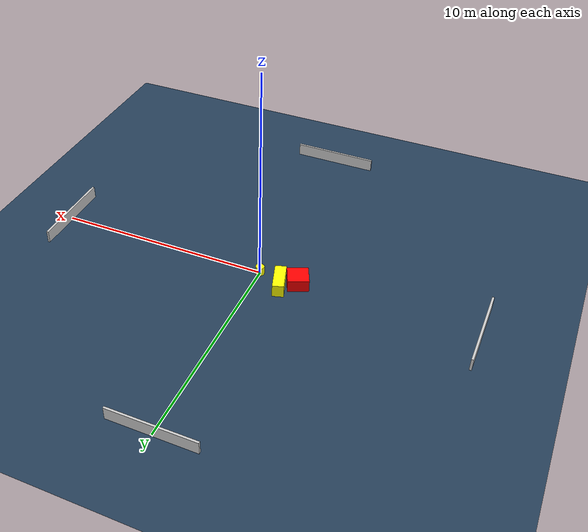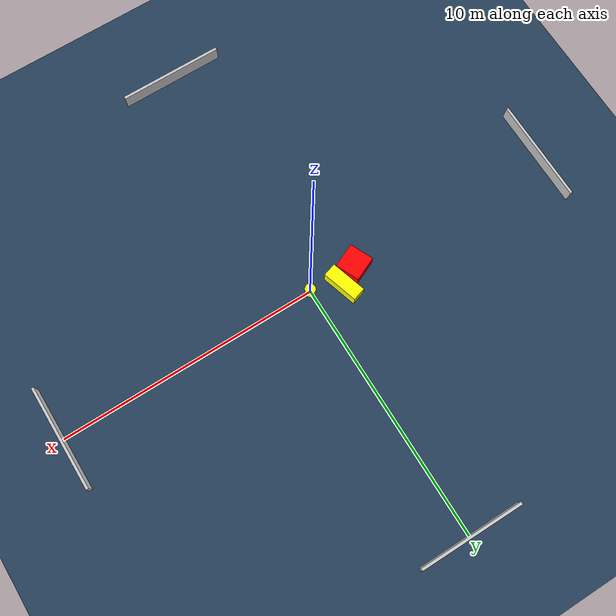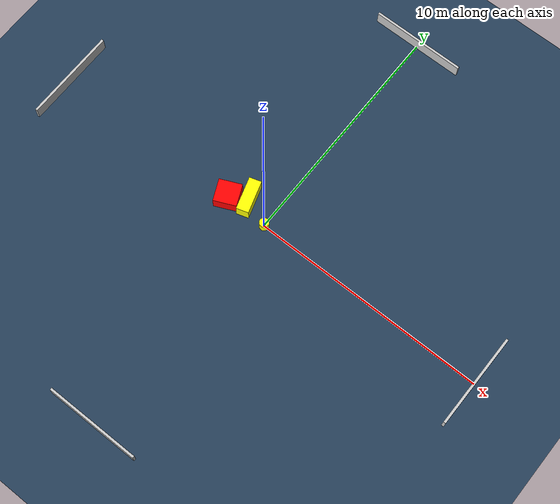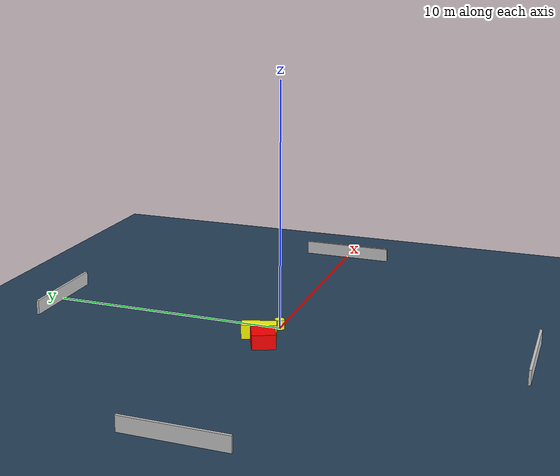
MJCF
<?xml version="1.0" ?>
<mujoco model="generated_environment">
  <option timestep="0.01" integrator="RK4" cone="elliptic"/>
  <default>
    <geom density="1"/>
  </default>
  <asset>
    <texture builtin="gradient" height="3072" name="skybox" rgb1="0.3 0.5 0.7" rgb2="0 0 0" type="skybox" width="512"/>
    <texture builtin="checker" height="300" name="groundplane" rgb1="0.2 0.3 0.4" rgb2="0.1 0.2 0.3" type="2d" width="300"/>
    <material name="groundplane" reflectance="0.2" texrepeat="5 5" texture="groundplane"/>
  </asset>
  <worldbody>
    <light dir="0 0 -1" directional="true" pos="0 0 1.5"/>
    <geom condim="3" friction="0.5 0.005 0.001" material="groundplane" name="floor" pos="0 0 0" size="0 0 0.05" type="plane"/>
    <body name="walls">
      <geom name="wall_1" condim="4" pos="-10.0 0.0 0.3" rgba="0.800000011920929 0.800000011920929 0.800000011920929 1.0" size="0.05 2.0 0.3" type="box"/>
      <geom name="wall_2" condim="4" pos="10.0 0.0 0.3" rgba="0.800000011920929 0.800000011920929 0.800000011920929 1.0" size="0.05 2.0 0.3" type="box"/>
      <geom name="wall_3" condim="4" pos="0.0 -10.0 0.3" rgba="0.800000011920929 0.800000011920929 0.800000011920929 1.0" size="2.0 0.05 0.3" type="box"/>
      <geom name="wall_4" condim="4" pos="0.0 10.0 0.3" rgba="0.800000011920929 0.800000011920929 0.800000011920929 1.0" size="2.0 0.05 0.3" type="box"/>
    </body>
    <body name="robot">
      <joint name="joint_x" type="slide" pos="0 0 0" axis="1 0 0"/>
      <joint name="joint_y" type="slide" pos="0 0 0" axis="0 1 0"/>
      <geom name="robot" type="cylinder" pos="0.0 0.0 0.2" size="0.2 0.2 0.0" mass="5.0" friction="1.0 0.005 0.0001" condim="4" rgba="1.0 1.0 0.0 1.0"/>
    </body>
    <body name="obstacle_1_movable">
      <geom name="obstacle_1_movable" condim="4" pos="-1.1290670714979874 0.46477256129411776 0.3" euler="0 0 16.99798072365065" friction="0.0 0.005 0.001" rgba="1.0 1.0 0.0 1.0" size="0.25794072461403494 0.6937762964009524 0.3" type="box" mass="0.1"/>
      <joint type="free"/>
    </body>
    <body name="obstacle_2_static">
      <geom name="obstacle_2_static" condim="4" pos="-1.8366527732772977 0.034364255270771596 0.3" euler="0 0 204.11552551161893" friction="0.0 0.005 0.001" rgba="1.0 0.0 0.0 1.0" size="0.4799903309946862 0.4676227760177494 0.3" type="box"/>
    </body>
  </worldbody>
  <actuator>
    <motor name="actuator_x" joint="joint_x" gear="1" ctrlrange="-1 1"/>
    <motor name="actuator_y" joint="joint_y" gear="1" ctrlrange="-1 1"/>
  </actuator>
</mujoco>
